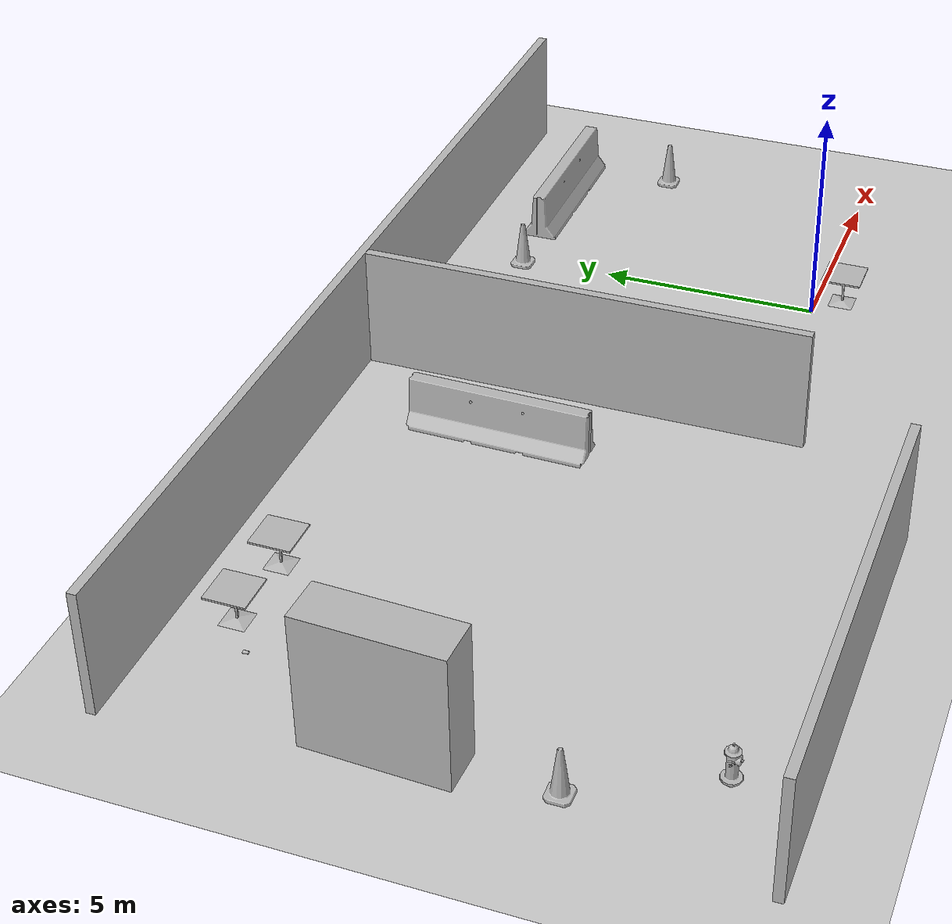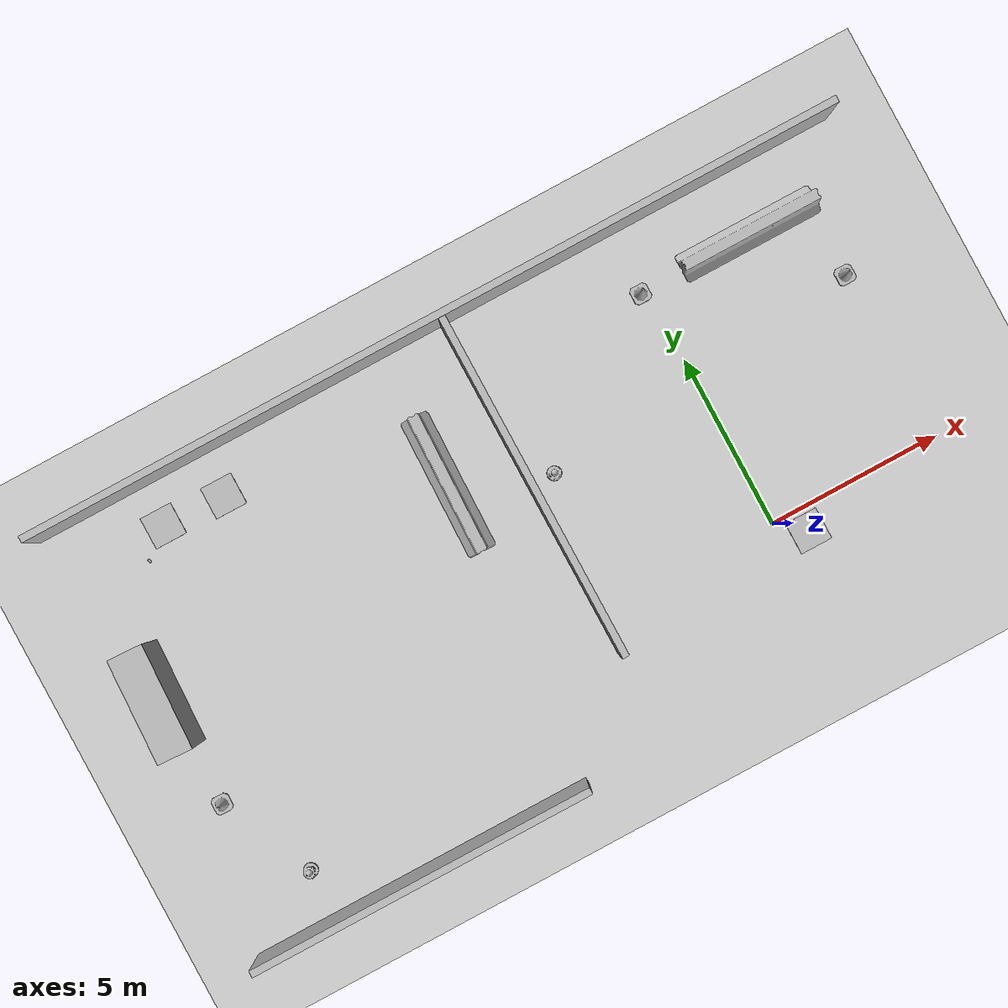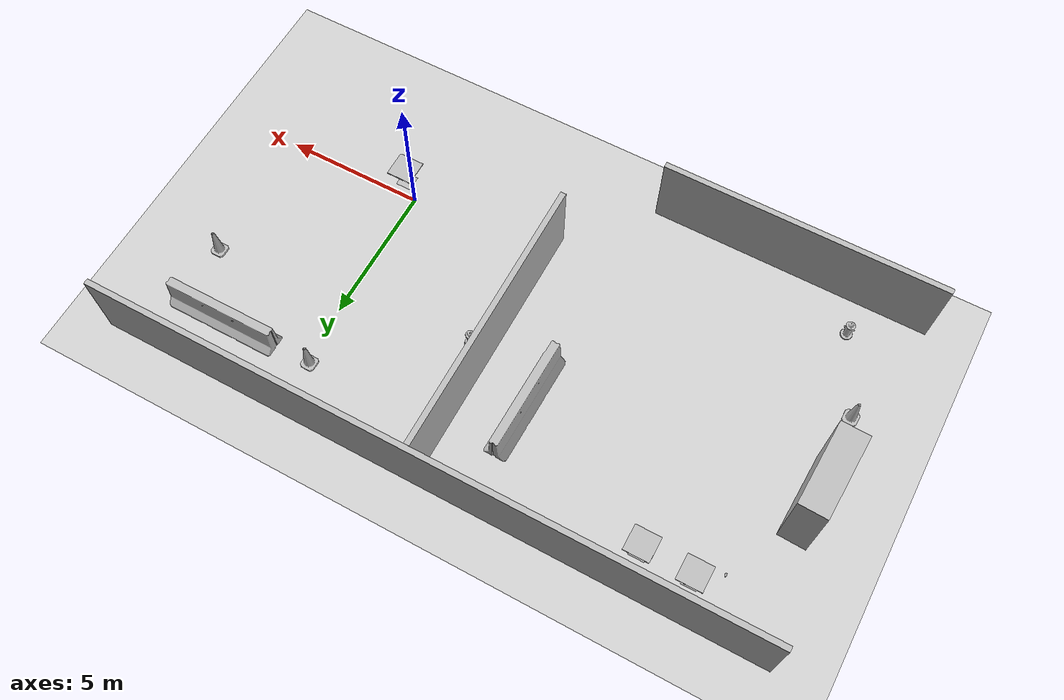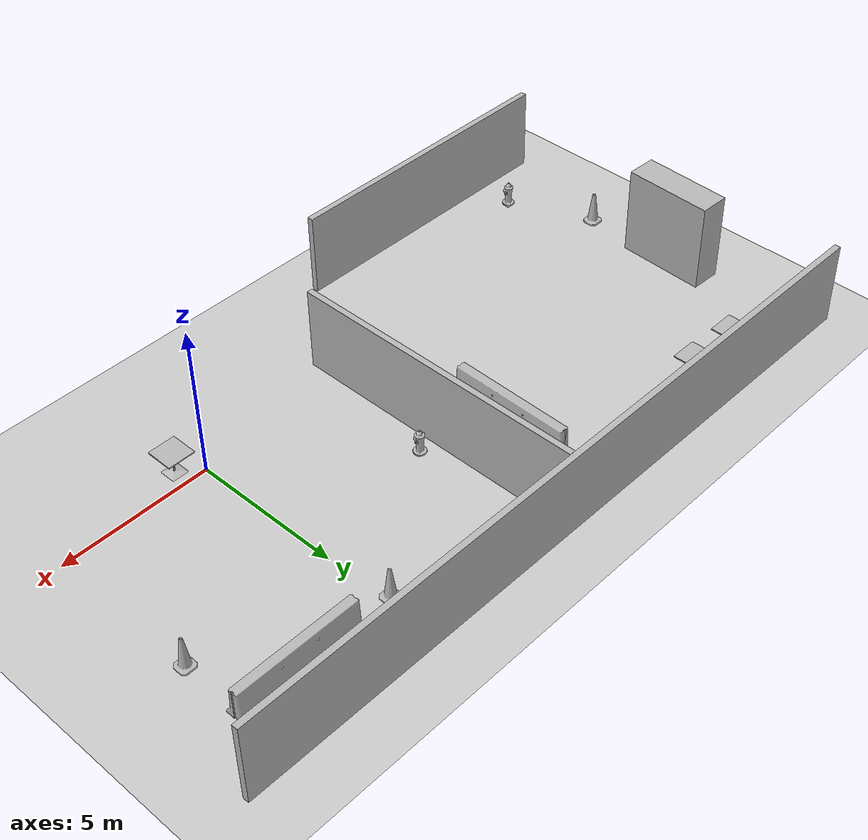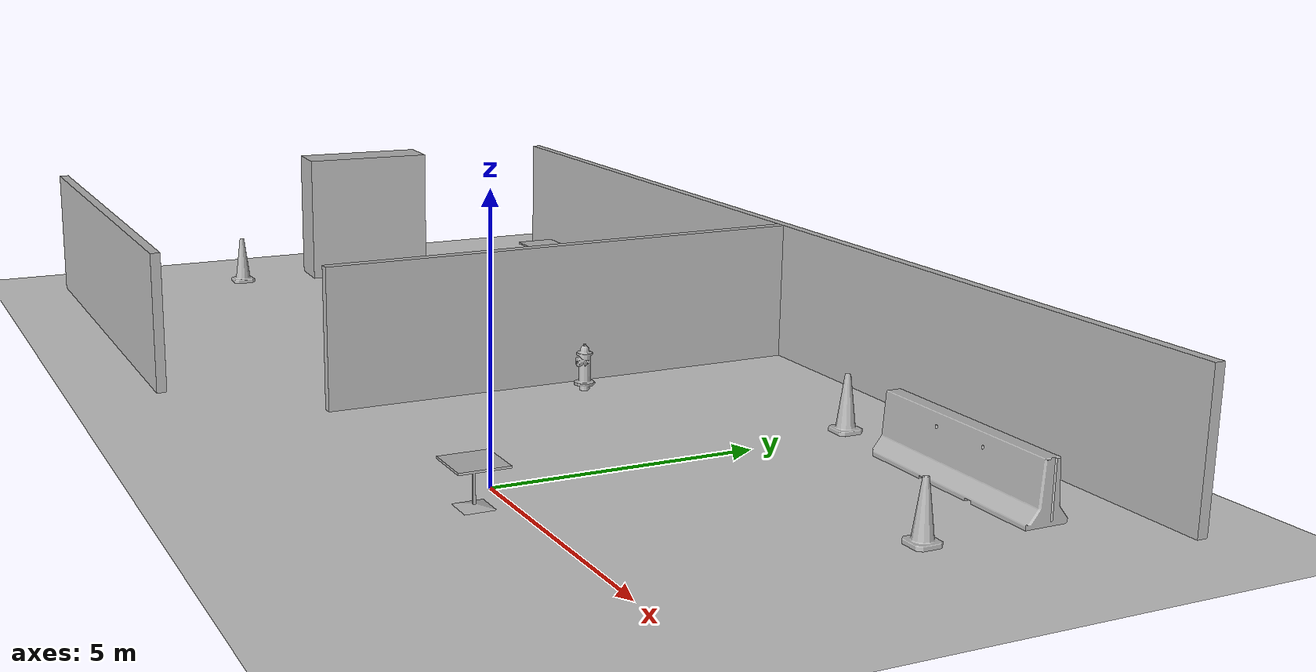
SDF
<sdf version="1.4">
 <world name="default">
  <model name="ground_plane">
   <static>1</static>
   <link name="link">
    <collision name="collision">
     <geometry><plane><normal>0 0 1</normal><size>100 100</size></plane></geometry>
     <surface><friction><ode><mu>100</mu><mu2>50</mu2></ode></friction></surface>
    </collision>
    <visual name="visual">
     <cast_shadows>0</cast_shadows>
     <geometry><plane><normal>0 0 1</normal><size>100 100</size></plane></geometry>
     <material>
      <script><uri>file://media/materials/scripts/gazebo.material</uri><name>Gazebo/Grey</name></script>
     </material>
    </visual>
    <velocity_decay><linear>0</linear><angular>0</angular></velocity_decay>
   </link>
  </model>
  <model name="house_5">
   <static>1</static>
   <link name="link">
    <pose>0 0 1.4 0 -0 0</pose>
    <collision name="collision"><geometry><box><size>10 0.2 2.8</size></box></geometry></collision>
    <visual name="visual">
     <cast_shadows>0</cast_shadows>
     <geometry><box><size>10 0.2 2.8</size></box></geometry>
     <material>
      <script>
       <uri>model://house/materials/scripts</uri>
       <uri>model://house/materials/textures</uri>
       <name>vrc/house_wall7</name>
      </script>
     </material>
    </visual>
    <velocity_decay><linear>0</linear><angular>0</angular></velocity_decay>
   </link>
   <pose>-12.6677 -3.71155 0 0 -0 0</pose>
  </model>
  <model name="house_7">
   <static>1</static>
   <link name="link">
    <pose>0 0 1.4 0 -0 0</pose>
    <collision name="collision"><geometry><box><size>10 0.2 2.8</size></box></geometry></collision>
    <visual name="visual">
     <cast_shadows>0</cast_shadows>
     <geometry><box><size>10 0.2 2.8</size></box></geometry>
     <material>
      <script>
       <uri>model://house/materials/scripts</uri>
       <uri>model://house/materials/textures</uri>
       <name>vrc/house_wall8</name>
      </script>
     </material>
    </visual>
    <velocity_decay><linear>0</linear><angular>0</angular></velocity_decay>
   </link>
   <pose>-5.24238 3.89284 0 0 0 -1.56856</pose>
  </model>
  <model name="cafe_table">
   <static>1</static>
   <link name="link">
    <collision name="surface">
     <pose>0 0 0.755 0 -0 0</pose>
     <geometry><box><size>0.913 0.913 0.04</size></box></geometry>
    </collision>
    <collision name="column">
     <pose>0 0 0.37 0 -0 0</pose>
     <geometry><box><size>0.042 0.042 0.74</size></box></geometry>
    </collision>
    <collision name="base">
     <pose>0 0 0.02 0 -0 0</pose>
     <geometry><box><size>0.56 0.56 0.04</size></box></geometry>
    </collision>
    <visual name="visual">
     <geometry><mesh><uri>model://cafe_table/meshes/cafe_table.dae</uri></mesh></geometry>
    </visual>
    <velocity_decay><linear>0</linear><angular>0</angular></velocity_decay>
   </link>
   <pose>-14.3735 7.68827 0 0 -0 0</pose>
  </model>
  <model name="Construction Cone_1">
   <link name="link">
    <collision name="collision">
     <geometry>
      <mesh><scale>10 10 10</scale><uri>model://construction_cone/meshes/construction_cone.dae</uri></mesh>
     </geometry>
    </collision>
    <visual name="visual">
     <geometry>
      <mesh><scale>10 10 10</scale><uri>model://construction_cone/meshes/construction_cone.dae</uri></mesh>
     </geometry>
    </visual>
    <velocity_decay><linear>0</linear><angular>0</angular></velocity_decay>
    <inertial>
     <inertia><ixx>1</ixx><ixy>0</ixy><ixz>0</ixz><iyy>1</iyy><iyz>0</iyz><izz>1</izz></inertia>
     <mass>1</mass>
    </inertial>
   </link>
   <pose>4.88218 4.96978 0 0 -0 0</pose>
   <static>0</static>
  </model>
  <model name="Construction Cone_2">
   <link name="link">
    <collision name="collision">
     <geometry>
      <mesh><scale>10 10 10</scale><uri>model://construction_cone/meshes/construction_cone.dae</uri></mesh>
     </geometry>
    </collision>
    <visual name="visual">
     <geometry>
      <mesh><scale>10 10 10</scale><uri>model://construction_cone/meshes/construction_cone.dae</uri></mesh>
     </geometry>
    </visual>
    <velocity_decay><linear>0</linear><angular>0</angular></velocity_decay>
    <inertial>
     <inertia><ixx>1</ixx><ixy>0</ixy><ixz>0</ixz><iyy>1</iyy><iyz>0</iyz><izz>1</izz></inertia>
     <mass>1</mass>
    </inertial>
   </link>
   <pose>-16.6151 0.403182 -9e-06 0 1e-06 0</pose>
   <static>0</static>
  </model>
  <model name="coke_can">
   <link name="link">
    <inertial>
     <pose>-0.01 -0.012 0.15 0 -0 0</pose>
     <mass>0.39</mass>
     <inertia><ixx>0.00058</ixx><ixy>0</ixy><ixz>0</ixz><iyy>0.00058</iyy><iyz>0</iyz><izz>0.00019</izz></inertia>
    </inertial>
    <collision name="collision">
     <pose>0 0 -0.46 0 -0 0</pose>
     <geometry><mesh><uri>model://coke_can/meshes/coke_can.dae</uri></mesh></geometry>
     <surface>
      <friction><ode><mu>1</mu><mu2>1</mu2></ode></friction>
      <contact><ode><kp>1e+07</kp><kd>1</kd><min_depth>0.001</min_depth><max_vel>0.1</max_vel></ode></contact>
     </surface>
    </collision>
    <visual name="visual">
     <pose>0 0 -0.46 0 -0 0</pose>
     <geometry><mesh><uri>model://coke_can/meshes/coke_can.dae</uri></mesh></geometry>
    </visual>
    <velocity_decay><linear>0</linear><angular>0</angular></velocity_decay>
   </link>
   <pose>-15.2561 7.29511 0.066301 -1.56902 0.777807 0.161427</pose>
   <static>0</static>
  </model>
  <model name="coke_can_1">
   <link name="link">
    <inertial>
     <pose>-0.01 -0.012 0.15 0 -0 0</pose>
     <mass>0.39</mass>
     <inertia><ixx>0.00058</ixx><ixy>0</ixy><ixz>0</ixz><iyy>0.00058</iyy><iyz>0</iyz><izz>0.00019</izz></inertia>
    </inertial>
    <collision name="collision">
     <pose>0 0 -0.46 0 -0 0</pose>
     <geometry><mesh><uri>model://coke_can/meshes/coke_can.dae</uri></mesh></geometry>
     <surface>
      <friction><ode><mu>1</mu><mu2>1</mu2></ode></friction>
      <contact><ode><kp>1e+07</kp><kd>1</kd><min_depth>0.001</min_depth><max_vel>0.1</max_vel></ode></contact>
     </surface>
    </collision>
    <visual name="visual">
     <pose>0 0 -0.46 0 -0 0</pose>
     <geometry><mesh><uri>model://coke_can/meshes/coke_can.dae</uri></mesh></geometry>
    </visual>
    <velocity_decay><linear>0</linear><angular>0</angular></velocity_decay>
   </link>
   <pose>-16.1922 6.78743 -0.004902 -0.064483 0.00125 0.000428</pose>
   <static>0</static>
  </model>
  <model name="cafe_table_1">
   <static>1</static>
   <link name="link">
    <collision name="surface">
     <pose>0 0 0.755 0 -0 0</pose>
     <geometry><box><size>0.913 0.913 0.04</size></box></geometry>
    </collision>
    <collision name="column">
     <pose>0 0 0.37 0 -0 0</pose>
     <geometry><box><size>0.042 0.042 0.74</size></box></geometry>
    </collision>
    <collision name="base">
     <pose>0 0 0.02 0 -0 0</pose>
     <geometry><box><size>0.56 0.56 0.04</size></box></geometry>
    </collision>
    <visual name="visual">
     <geometry><mesh><uri>model://cafe_table/meshes/cafe_table.dae</uri></mesh></geometry>
    </visual>
    <velocity_decay><linear>0</linear><angular>0</angular></velocity_decay>
   </link>
   <pose>0.673533 -0.582018 0 0 -0 0</pose>
  </model>
  <model name="fire_hydrant_0">
   <static>1</static>
   <link name="link">
    <collision name="collision">
     <geometry><mesh><uri>model://fire_hydrant/meshes/fire_hydrant.dae</uri></mesh></geometry>
    </collision>
    <visual name="visual">
     <geometry><mesh><uri>model://fire_hydrant/meshes/fire_hydrant.dae</uri></mesh></geometry>
    </visual>
    <velocity_decay><linear>0</linear><angular>0</angular></velocity_decay>
   </link>
   <pose>-4.534 3.98558 0 0 -0 0</pose>
  </model>
  <model name="fire_hydrant_1">
   <static>1</static>
   <link name="link">
    <collision name="collision">
     <geometry><mesh><uri>model://fire_hydrant/meshes/fire_hydrant.dae</uri></mesh></geometry>
    </collision>
    <visual name="visual">
     <geometry><mesh><uri>model://fire_hydrant/meshes/fire_hydrant.dae</uri></mesh></geometry>
    </visual>
    <velocity_decay><linear>0</linear><angular>0</angular></velocity_decay>
   </link>
   <pose>-15.3449 -2.28543 0 0 -0 0</pose>
  </model>
  <model name="coke_can_5">
   <link name="link">
    <inertial>
     <pose>-0.01 -0.012 0.15 0 -0 0</pose>
     <mass>0.39</mass>
     <inertia><ixx>0.00058</ixx><ixy>0</ixy><ixz>0</ixz><iyy>0.00058</iyy><iyz>0</iyz><izz>0.00019</izz></inertia>
    </inertial>
    <collision name="collision">
     <pose>0 0 -0.46 0 -0 0</pose>
     <geometry><mesh><uri>model://coke_can/meshes/coke_can.dae</uri></mesh></geometry>
     <surface>
      <friction><ode><mu>1</mu><mu2>1</mu2></ode></friction>
      <contact><ode><kp>1e+07</kp><kd>1</kd><min_depth>0.001</min_depth><max_vel>0.1</max_vel></ode></contact>
     </surface>
    </collision>
    <visual name="visual">
     <pose>0 0 -0.46 0 -0 0</pose>
     <geometry><mesh><uri>model://coke_can/meshes/coke_can.dae</uri></mesh></geometry>
    </visual>
    <velocity_decay><linear>0</linear><angular>0</angular></velocity_decay>
   </link>
   <pose>3.00001 0.999748 -0.004902 -0.064484 0.001249 0.000374</pose>
   <static>0</static>
  </model>
  <model name="coke_can_6">
   <link name="link">
    <inertial>
     <pose>-0.01 -0.012 0.15 0 -0 0</pose>
     <mass>0.39</mass>
     <inertia><ixx>0.00058</ixx><ixy>0</ixy><ixz>0</ixz><iyy>0.00058</iyy><iyz>0</iyz><izz>0.00019</izz></inertia>
    </inertial>
    <collision name="collision">
     <pose>0 0 -0.46 0 -0 0</pose>
     <geometry><mesh><uri>model://coke_can/meshes/coke_can.dae</uri></mesh></geometry>
     <surface>
      <friction><ode><mu>1</mu><mu2>1</mu2></ode></friction>
      <contact><ode><kp>1e+07</kp><kd>1</kd><min_depth>0.001</min_depth><max_vel>0.1</max_vel></ode></contact>
     </surface>
    </collision>
    <visual name="visual">
     <pose>0 0 -0.46 0 -0 0</pose>
     <geometry><mesh><uri>model://coke_can/meshes/coke_can.dae</uri></mesh></geometry>
    </visual>
    <velocity_decay><linear>0</linear><angular>0</angular></velocity_decay>
   </link>
   <pose>3.00001 0.584371 -0.004902 -0.064481 0.001252 0.000327</pose>
   <static>0</static>
  </model>
  <model name="jersey_barrier">
   <static>1</static>
   <link name="link">
    <visual name="visual">
     <geometry><mesh><uri>model://jersey_barrier/meshes/jersey_barrier.dae</uri></mesh></geometry>
    </visual>
    <collision name="upright">
     <pose>0 0 0.5715 0 -0 0</pose>
     <geometry><box><size>4.06542 0.3063 1.143</size></box></geometry>
    </collision>
    <collision name="base">
     <pose>0 0 0.032258 0 -0 0</pose>
     <geometry><box><size>4.06542 0.8107 0.064516</size></box></geometry>
    </collision>
    <collision name="base2">
     <pose>0 0 0.1 0 -0 0</pose>
     <geometry><box><size>4.06542 0.65 0.1</size></box></geometry>
    </collision>
    <collision name="base3">
     <pose>0 0 0.2 0 -0 0</pose>
     <geometry><box><size>4.06542 0.5 0.1</size></box></geometry>
    </collision>
    <collision name="left-angle">
     <pose>0 -0.224 0.2401 0.9 -0 0</pose>
     <geometry><box><size>4.06542 0.5 0.064516</size></box></geometry>
    </collision>
    <collision name="right-angle">
     <pose>0 0.224 0.2401 -0.9 0 0</pose>
     <geometry><box><size>4.06542 0.5 0.064516</size></box></geometry>
    </collision>
    <velocity_decay><linear>0</linear><angular>0</angular></velocity_decay>
   </link>
   <pose>3.09533 7.17836 0 0 -0 0</pose>
  </model>
  <model name="Construction Cone_5">
   <link name="link">
    <collision name="collision">
     <geometry>
      <mesh><scale>10 10 10</scale><uri>model://construction_cone/meshes/construction_cone.dae</uri></mesh>
     </geometry>
    </collision>
    <visual name="visual">
     <geometry>
      <mesh><scale>10 10 10</scale><uri>model://construction_cone/meshes/construction_cone.dae</uri></mesh>
     </geometry>
    </visual>
    <velocity_decay><linear>0</linear><angular>0</angular></velocity_decay>
    <inertial>
     <inertia><ixx>1</ixx><ixy>0</ixy><ixz>0</ixz><iyy>1</iyy><iyz>0</iyz><izz>1</izz></inertia>
     <mass>1</mass>
    </inertial>
   </link>
   <pose>-0.196703 7.12932 -0 0 -1e-06 0</pose>
   <static>0</static>
  </model>
  <model name="brick_box_3x1x3">
   <static>1</static>
   <link name="chassis">
    <pose>0 0 1.5 0 -0 0</pose>
    <collision name="collision"><geometry><box><size>3 1 3</size></box></geometry></collision>
    <visual name="visual">
     <geometry><mesh><uri>model://brick_box_3x1x3/meshes/simple_box.dae</uri><scale>3 1 3</scale></mesh></geometry>
     <material>
      <script>
       <uri>model://brick_box_3x1x3/materials/scripts</uri>
       <uri>model://brick_box_3x1x3/materials/textures</uri>
       <name>BrickBox/Diffuse</name>
      </script>
     </material>
    </visual>
    <velocity_decay><linear>0</linear><angular>0</angular></velocity_decay>
   </link>
   <pose>-16.6208 3.65579 0 0 0 -1.61155</pose>
  </model>
  <model name="cafe_table_3">
   <static>1</static>
   <link name="link">
    <collision name="surface">
     <pose>0 0 0.755 0 -0 0</pose>
     <geometry><box><size>0.913 0.913 0.04</size></box></geometry>
    </collision>
    <collision name="column">
     <pose>0 0 0.37 0 -0 0</pose>
     <geometry><box><size>0.042 0.042 0.74</size></box></geometry>
    </collision>
    <collision name="base">
     <pose>0 0 0.02 0 -0 0</pose>
     <geometry><box><size>0.56 0.56 0.04</size></box></geometry>
    </collision>
    <visual name="visual">
     <geometry><mesh><uri>model://cafe_table/meshes/cafe_table.dae</uri></mesh></geometry>
    </visual>
    <velocity_decay><linear>0</linear><angular>0</angular></velocity_decay>
   </link>
   <pose>-12.585 7.63016 0 0 -0 0</pose>
  </model>
  <model name="jersey_barrier_0">
   <static>1</static>
   <link name="link">
    <visual name="visual">
     <geometry><mesh><uri>model://jersey_barrier/meshes/jersey_barrier.dae</uri></mesh></geometry>
    </visual>
    <collision name="upright">
     <pose>0 0 0.5715 0 -0 0</pose>
     <geometry><box><size>4.06542 0.3063 1.143</size></box></geometry>
    </collision>
    <collision name="base">
     <pose>0 0 0.032258 0 -0 0</pose>
     <geometry><box><size>4.06542 0.8107 0.064516</size></box></geometry>
    </collision>
    <collision name="base2">
     <pose>0 0 0.1 0 -0 0</pose>
     <geometry><box><size>4.06542 0.65 0.1</size></box></geometry>
    </collision>
    <collision name="base3">
     <pose>0 0 0.2 0 -0 0</pose>
     <geometry><box><size>4.06542 0.5 0.1</size></box></geometry>
    </collision>
    <collision name="left-angle">
     <pose>0 -0.224 0.2401 0.9 -0 0</pose>
     <geometry><box><size>4.06542 0.5 0.064516</size></box></geometry>
    </collision>
    <collision name="right-angle">
     <pose>0 0.224 0.2401 -0.9 0 0</pose>
     <geometry><box><size>4.06542 0.5 0.064516</size></box></geometry>
    </collision>
    <velocity_decay><linear>0</linear><angular>0</angular></velocity_decay>
   </link>
   <pose>-7.18547 5.07936 0 0 0 -1.58903</pose>
  </model>
  <model name="house_9">
   <static>1</static>
   <link name="link">
    <pose>0 0 1.4 0 -0 0</pose>
    <collision name="collision"><geometry><box><size>24 0.2 2.8</size></box></geometry></collision>
    <visual name="visual">
     <cast_shadows>0</cast_shadows>
     <geometry><box><size>24 0.2 2.8</size></box></geometry>
     <material>
      <script>
       <uri>model://house/materials/scripts</uri>
       <uri>model://house/materials/textures</uri>
       <name>vrc/house_wall2</name>
      </script>
     </material>
    </visual>
    <velocity_decay><linear>0</linear><angular>0</angular></velocity_decay>
   </link>
   <pose>-5.57602 9 0 0 -0 0</pose>
  </model>
 </world>
</sdf>
